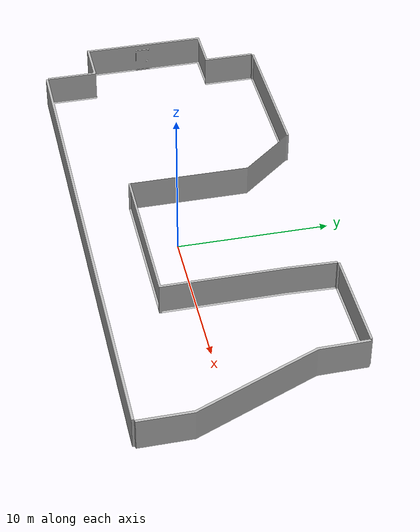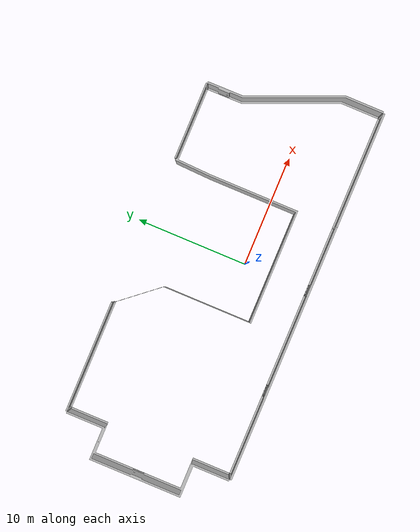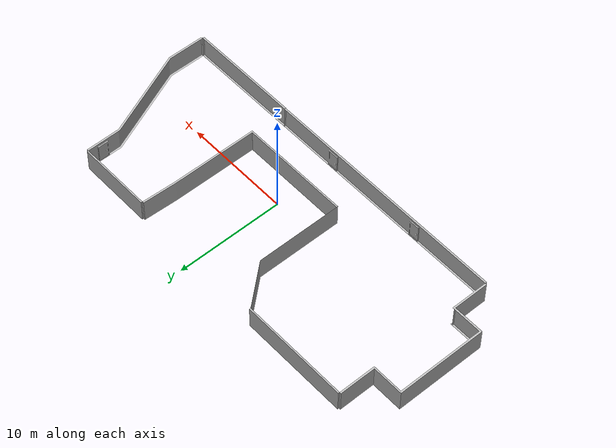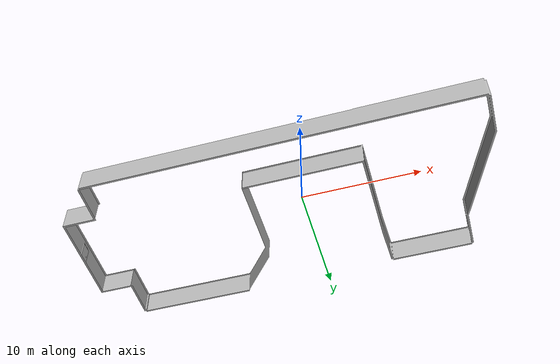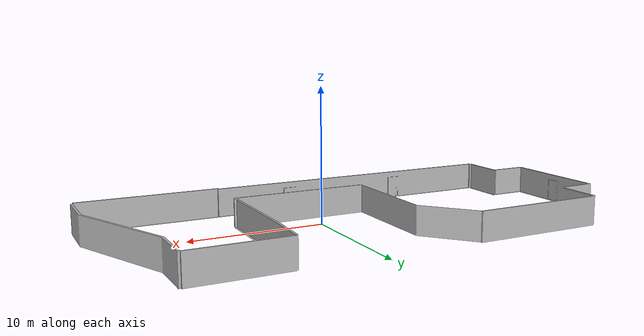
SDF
<?xml version="1.0" ?>
<sdf version="1.6">
  <model name="office">
    <static>true</static>
    <link name="link">
      <collision name="collision">
        <geometry>
          <mesh>
            <scale>1 1 1</scale>
            <uri>model://office/meshes/office.dae</uri>
          </mesh>
        </geometry>
         <surface>
          <contact>
             <collide_bitmask>0xffff</collide_bitmask>
          </contact>
          <friction>
            <ode>
              <mu>100</mu>
              <mu2>50</mu2>
            </ode>
          </friction>
        </surface>
      </collision>
      <visual name="visual">
        <geometry>
          <mesh>
            <scale>1 1 1</scale>
            <uri>model://office/meshes/office.dae</uri>
          </mesh>
        </geometry>
      </visual>
    </link>
  </model>
</sdf>
